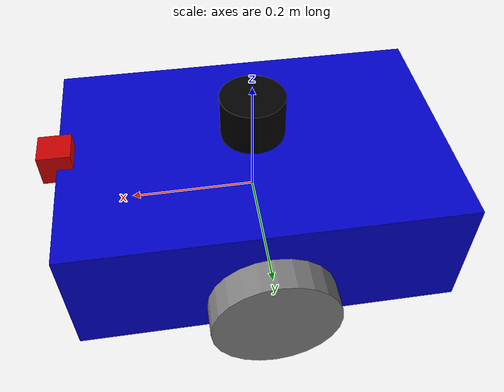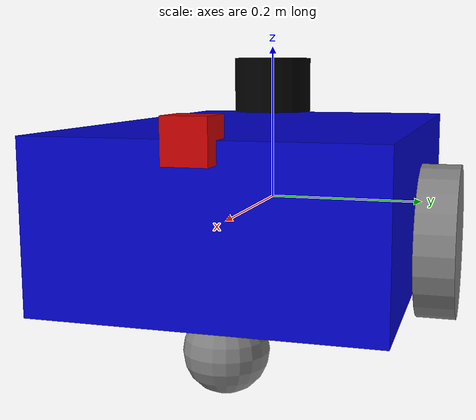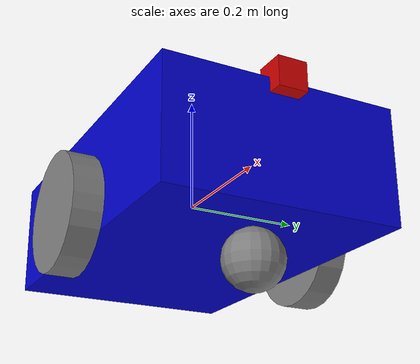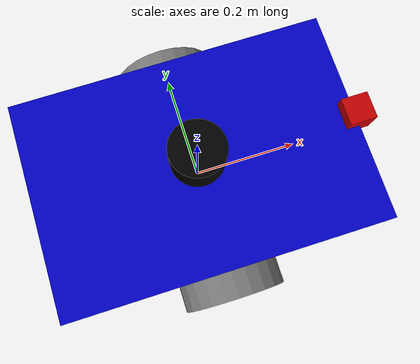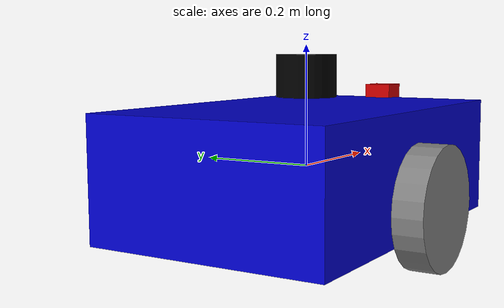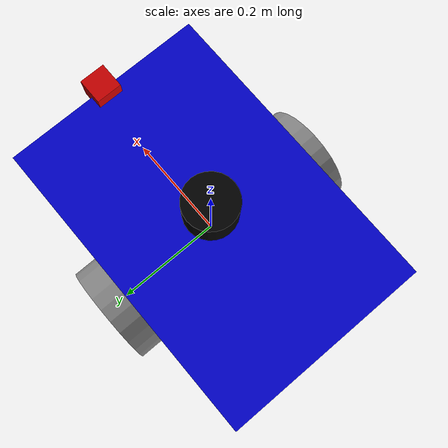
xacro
<?xml version="1.0"?>
<robot name="rover" xmlns:xacro="http://www.ros.org/wiki/xacro">

  <!-- Base Link -->
  <link name="base_link">
    <visual>
      <geometry>
        <box size="0.6 0.4 0.2"/>
      </geometry>
      <material name="blue">
        <color rgba="0 0 0.8 1"/>
      </material>
    </visual>
    <collision>
      <geometry>
        <box size="0.6 0.4 0.2"/>
      </geometry>
    </collision>
    <inertial>
      <mass value="10"/>
      <origin xyz="0 0 0"/>
      <inertia ixx="0.1" ixy="0" ixz="0" iyy="0.1" iyz="0" izz="0.1"/>
    </inertial>
  </link>

  <!-- Lidar Link -->
  <link name="lidar_link">
    <visual>
      <geometry>
        <cylinder radius="0.05" length="0.07"/>
      </geometry>
      <material name="black">
        <color rgba="0 0 0 1"/>
      </material>
    </visual>
    <collision>
      <geometry>
        <cylinder radius="0.05" length="0.07"/>
      </geometry>
    </collision>
    <inertial>
      <mass value="0.1"/>
      <origin xyz="0 0 0"/>
      <inertia ixx="0.001" ixy="0" ixz="0" iyy="0.001" iyz="0" izz="0.001"/>
    </inertial>
  </link>

  <joint name="lidar_joint" type="fixed">
    <parent link="base_link"/>
    <child link="lidar_link"/>
    <origin xyz="0 0 0.15" rpy="0 0 0"/>
  </joint>

  <!-- Camera Link -->
  <link name="camera_link">
    <visual>
      <geometry>
        <box size="0.05 0.05 0.05"/>
      </geometry>
      <material name="red">
        <color rgba="0.8 0 0 1"/>
      </material>
    </visual>
    <collision>
      <geometry>
        <box size="0.05 0.05 0.05"/>
      </geometry>
    </collision>
    <inertial>
      <mass value="0.1"/>
      <origin xyz="0 0 0"/>
      <inertia ixx="0.001" ixy="0" ixz="0" iyy="0.001" iyz="0" izz="0.001"/>
    </inertial>
  </link>

  <joint name="camera_joint" type="fixed">
    <parent link="base_link"/>
    <child link="camera_link"/>
    <origin xyz="0.3 0 0.1" rpy="0 0 0"/>
  </joint>

  <!-- Left Wheel -->
  <link name="left_wheel">
    <visual>
      <origin xyz="0 0 0" rpy="1.5708 0 0"/>
      <geometry>
        <cylinder radius="0.1" length="0.05"/>
      </geometry>
      <material name="gray">
        <color rgba="0.5 0.5 0.5 1"/>
      </material>
    </visual>
    <collision>
      <origin xyz="0 0 0" rpy="1.5708 0 0"/>
      <geometry>
        <cylinder radius="0.1" length="0.05"/>
      </geometry>
    </collision>
    <inertial>
      <mass value="1"/>
      <origin xyz="0 0 0"/>
      <inertia ixx="0.01" ixy="0" ixz="0" iyy="0.01" iyz="0" izz="0.01"/>
    </inertial>
  </link>

  <joint name="left_wheel_joint" type="continuous">
    <parent link="base_link"/>
    <child link="left_wheel"/>
    <origin xyz="0 0.225 -0.05" rpy="0 0 0"/>
    <axis xyz="0 1 0"/>
  </joint>

  <!-- Right Wheel -->
  <link name="right_wheel">
    <visual>
      <origin xyz="0 0 0" rpy="1.5708 0 0"/>
      <geometry>
        <cylinder radius="0.1" length="0.05"/>
      </geometry>
      <material name="gray">
        <color rgba="0.5 0.5 0.5 1"/>
      </material>
    </visual>
    <collision>
      <origin xyz="0 0 0" rpy="1.5708 0 0"/>
      <geometry>
        <cylinder radius="0.1" length="0.05"/>
      </geometry>
    </collision>
    <inertial>
      <mass value="1"/>
      <origin xyz="0 0 0"/>
      <inertia ixx="0.01" ixy="0" ixz="0" iyy="0.01" iyz="0" izz="0.01"/>
    </inertial>
  </link>

  <joint name="right_wheel_joint" type="continuous">
    <parent link="base_link"/>
    <child link="right_wheel"/>
    <origin xyz="0 -0.225 -0.05" rpy="0 0 0"/>
    <axis xyz="0 1 0"/>
  </joint>

  <!-- Caster Wheel -->
  <link name="caster_wheel">
    <visual>
      <geometry>
        <sphere radius="0.05"/>
      </geometry>
      <material name="gray">
        <color rgba="0.5 0.5 0.5 1"/>
      </material>
    </visual>
    <collision>
      <geometry>
        <sphere radius="0.05"/>
      </geometry>
    </collision>
    <inertial>
      <mass value="0.5"/>
      <origin xyz="0 0 0"/>
      <inertia ixx="0.001" ixy="0" ixz="0" iyy="0.001" iyz="0" izz="0.001"/>
    </inertial>
  </link>

  <joint name="caster_joint" type="fixed">
    <parent link="base_link"/>
    <child link="caster_wheel"/>
    <origin xyz="0.2 0 -0.15" rpy="0 0 0"/>
  </joint>

  <!-- Gazebo Sim Plugins -->
  <gazebo>
    <plugin filename="gz-sim-diff-drive-system" name="gz::sim::systems::DiffDrive">
      <left_joint>left_wheel_joint</left_joint>
      <right_joint>right_wheel_joint</right_joint>
      <wheel_separation>0.45</wheel_separation>
      <wheel_diameter>0.2</wheel_diameter>
      <max_linear_acceleration>1.0</max_linear_acceleration>
      <max_angular_acceleration>2.0</max_angular_acceleration>
      <topic>/cmd_vel</topic>
      <odom_topic>/odom</odom_topic>
      <frame_id>odom</frame_id>
      <child_frame_id>base_link</child_frame_id>
    </plugin>
  </gazebo>

  <!-- LiDAR Sensor -->
  <gazebo reference="lidar_link">
    <sensor name="lidar" type="gpu_lidar">
      <topic>/scan</topic>
      <update_rate>10</update_rate>
      <lidar>
        <scan>
          <horizontal>
            <samples>360</samples>
            <resolution>1</resolution>
            <min_angle>-3.14159</min_angle>
            <max_angle>3.14159</max_angle>
          </horizontal>
        </scan>
        <range>
          <min>0.3</min>
          <max>15.0</max>
          <resolution>0.01</resolution>
        </range>
      </lidar>
      <visualize>true</visualize>
    </sensor>
  </gazebo>

  <!-- Camera Sensor -->
  <gazebo reference="camera_link">
    <sensor name="camera" type="camera">
      <topic>/camera/image_raw</topic>
      <update_rate>30</update_rate>
      <camera>
        <horizontal_fov>1.3962634</horizontal_fov>
        <image>
          <width>640</width>
          <height>480</height>
          <format>R8G8B8</format>
        </image>
        <clip>
          <near>0.02</near>
          <far>300</far>
        </clip>
      </camera>
      <visualize>true</visualize>
    </sensor>
  </gazebo>

</robot>
